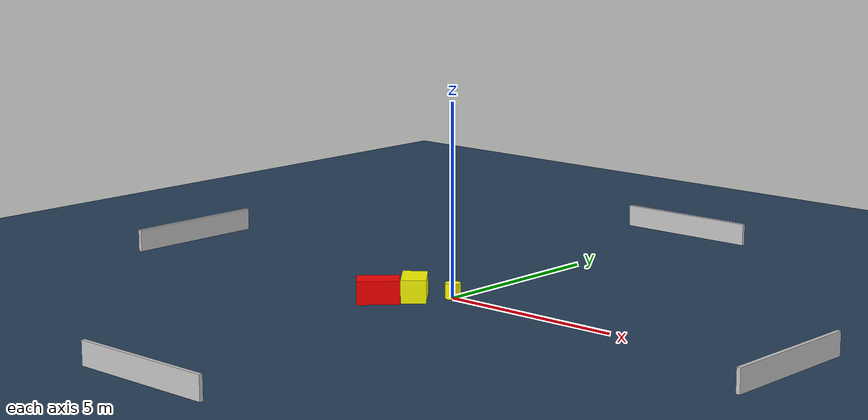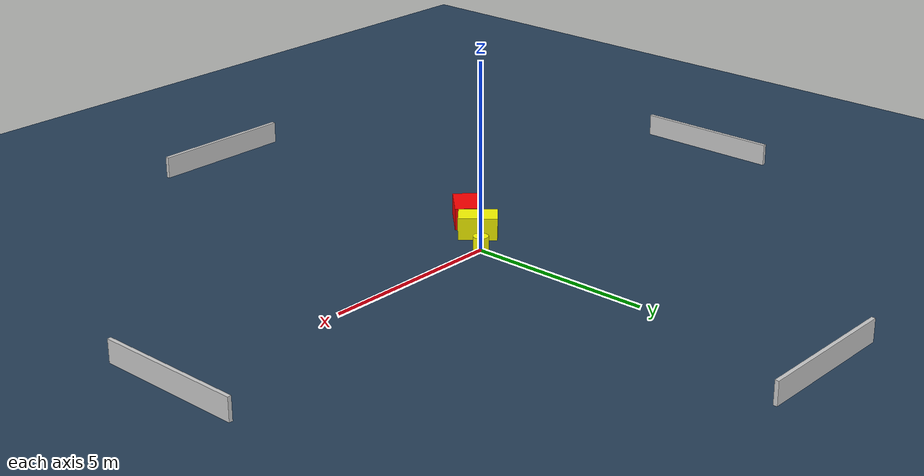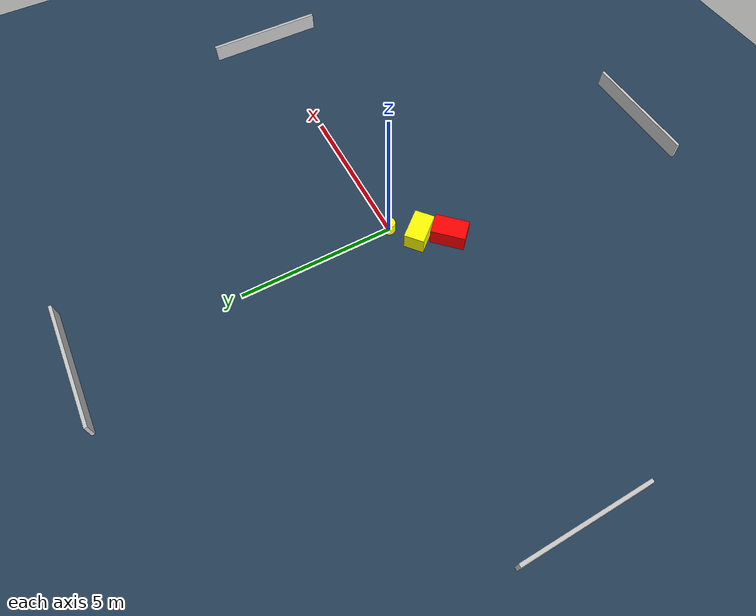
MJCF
<?xml version="1.0" ?>
<mujoco model="generated_environment">
  <option timestep="0.01" integrator="RK4" cone="elliptic"/>
  <default>
    <geom density="1"/>
  </default>
  <asset>
    <texture builtin="gradient" height="3072" name="skybox" rgb1="0.3 0.5 0.7" rgb2="0 0 0" type="skybox" width="512"/>
    <texture builtin="checker" height="300" name="groundplane" rgb1="0.2 0.3 0.4" rgb2="0.1 0.2 0.3" type="2d" width="300"/>
    <material name="groundplane" reflectance="0.2" texrepeat="5 5" texture="groundplane"/>
  </asset>
  <worldbody>
    <light dir="0 0 -1" directional="true" pos="0 0 1.5"/>
    <geom condim="3" friction="0.5 0.005 0.001" material="groundplane" name="floor" pos="0 0 0" size="0 0 0.05" type="plane"/>
    <body name="walls">
      <geom name="wall_1" condim="4" pos="-10.0 0.0 0.3" rgba="0.800000011920929 0.800000011920929 0.800000011920929 1.0" size="0.05 2.0 0.3" type="box"/>
      <geom name="wall_2" condim="4" pos="10.0 0.0 0.3" rgba="0.800000011920929 0.800000011920929 0.800000011920929 1.0" size="0.05 2.0 0.3" type="box"/>
      <geom name="wall_3" condim="4" pos="0.0 -10.0 0.3" rgba="0.800000011920929 0.800000011920929 0.800000011920929 1.0" size="2.0 0.05 0.3" type="box"/>
      <geom name="wall_4" condim="4" pos="0.0 10.0 0.3" rgba="0.800000011920929 0.800000011920929 0.800000011920929 1.0" size="2.0 0.05 0.3" type="box"/>
    </body>
    <body name="robot">
      <joint name="joint_x" type="slide" pos="0 0 0" axis="1 0 0"/>
      <joint name="joint_y" type="slide" pos="0 0 0" axis="0 1 0"/>
      <geom name="robot" type="cylinder" pos="0.0 0.0 0.2" size="0.2 0.2 0.0" mass="5.0" friction="1.0 0.005 0.0001" condim="4" rgba="1.0 1.0 0.0 1.0"/>
    </body>
    <body name="obstacle_1_movable">
      <geom name="obstacle_1_movable" condim="4" pos="-0.6777307257664592 -0.7032137557931036 0.3" euler="0 0 40.38353550095615" friction="0.0 0.005 0.001" rgba="1.0 1.0 0.0 1.0" size="0.32221965144544495 0.5110951737766338 0.3" type="box" mass="0.1"/>
      <joint type="free"/>
    </body>
    <body name="obstacle_2_static">
      <geom name="obstacle_2_static" condim="4" pos="-1.1552233402337686 -1.5229823718753217 0.3" euler="0 0 135.7156122700543" friction="0.0 0.005 0.001" rgba="1.0 0.0 0.0 1.0" size="0.33915663466510904 0.5450393281399895 0.3" type="box"/>
    </body>
  </worldbody>
  <actuator>
    <motor name="actuator_x" joint="joint_x" gear="1" ctrlrange="-1 1"/>
    <motor name="actuator_y" joint="joint_y" gear="1" ctrlrange="-1 1"/>
  </actuator>
</mujoco>
